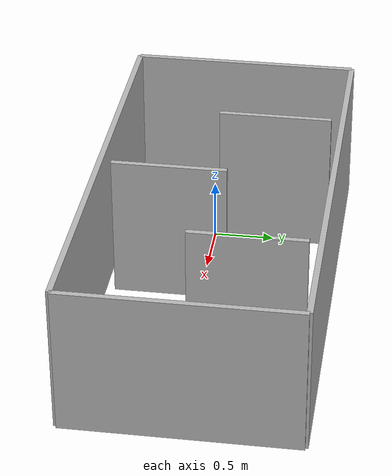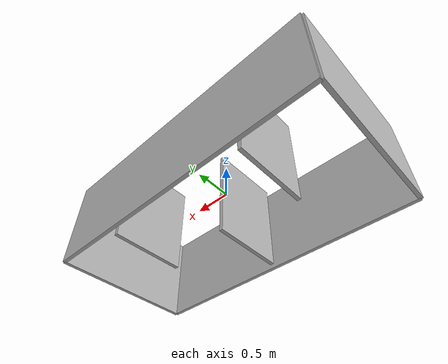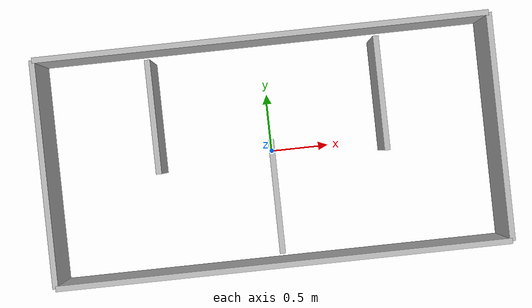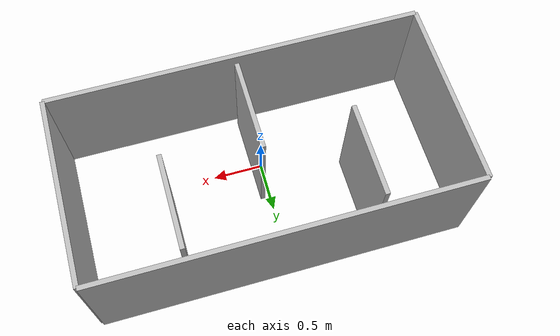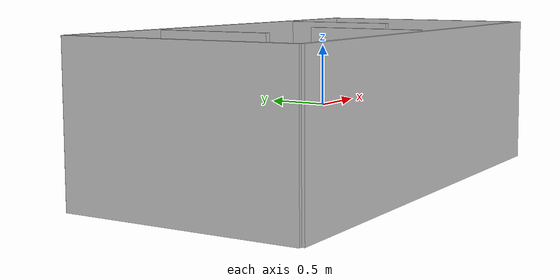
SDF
<?xml version="1.0"?>

<sdf version="1.7">
  <model name="small_maze">

    <!-- Bottom wall -->
    <link name="wall_bottom">
      <pose>0 -1 0.00 0 0 0</pose>
      <collision name="collision">
        <geometry>
          <box>
            <size>4.0 0.05 1.3</size>
          </box>
        </geometry>
      </collision>
      <visual name="visual">
        <geometry>
          <box>
            <size>4.0 0.05 1.3</size>
          </box>
        </geometry>
      </visual>
    </link>

    <!-- Top wall -->
    <link name="wall_top">
      <pose>0 1 0.00 0 0 0</pose>
      <collision name="collision">
        <geometry>
          <box>
            <size>4.0 0.05 1.3</size>
          </box>
        </geometry>
      </collision>
      <visual name="visual">
        <geometry>
          <box>
            <size>4.0 0.05 1.3</size>
          </box>
        </geometry>
      </visual>
    </link>

    <!-- Left wall -->
    <link name="wall_left">
      <pose>-2 0 0.00 0 0 1.5708</pose>
      <collision name="collision">
        <geometry>
          <box>
            <size>2.0 0.05 1.3</size>
          </box>
        </geometry>
      </collision>
      <visual name="visual">
        <geometry>
          <box>
            <size>2.0 0.05 1.3</size>
          </box>
        </geometry>
      </visual>
    </link>

    <!-- Right wall -->
    <link name="wall_right">
      <pose>2 0 0.00 0 0 1.5708</pose>
      <collision name="collision">
        <geometry>
          <box>
            <size>2.0 0.05 1.3</size>
          </box>
        </geometry>
      </collision>
      <visual name="visual">
        <geometry>
          <box>
            <size>2.0 0.05 1.3</size>
          </box>
        </geometry>
      </visual>
    </link>

    <!-- Internal wall 1 -->
    <link name="inner_wall_1">
      <pose>-1.0 0.4 0.00 0 0 1.5708</pose>
      <collision name="collision">
        <geometry>
          <box>
            <size>1.0 0.05 1.3</size>
          </box>
        </geometry>
      </collision>
      <visual name="visual">
        <geometry>
          <box>
            <size>1.0 0.05 1.3</size>
          </box>
        </geometry>
      </visual>
    </link>

    <!-- Internal wall 2 -->
    <link name="inner_wall_2">
      <pose>0.0 -0.4 0.00 0 0 1.5708</pose>
      <collision name="collision">
        <geometry>
          <box>
            <size>1.0 0.05 1.3</size>
          </box>
        </geometry>
      </collision>
      <visual name="visual">
        <geometry>
          <box>
            <size>1.0 0.05 1.3</size>
          </box>
        </geometry>
      </visual>
    </link>

    <!-- Internal wall 3 -->
    <link name="inner_wall_3">
      <pose>1.0 0.4 0.00 0 0 1.5708</pose>
      <collision name="collision">
        <geometry>
          <box>
            <size>1.0 0.05 1.3</size>
          </box>
        </geometry>
      </collision>
      <visual name="visual">
        <geometry>
          <box>
            <size>1.0 0.05 1.3</size>
          </box>
        </geometry>
      </visual>
    </link>

    <static>true</static>

  </model>
</sdf>
